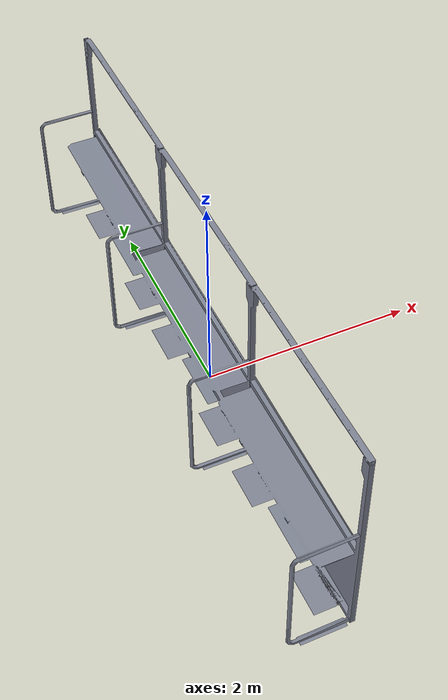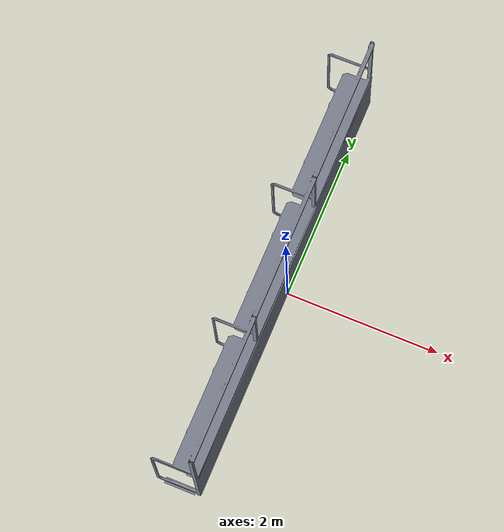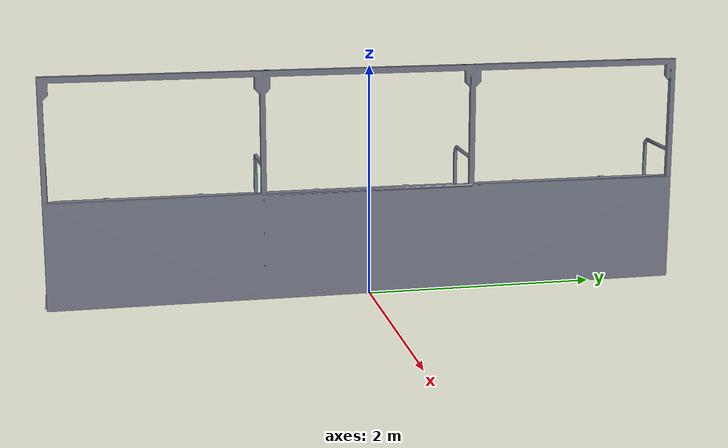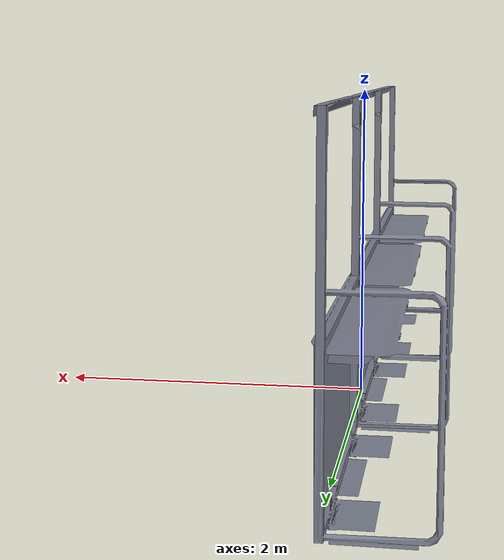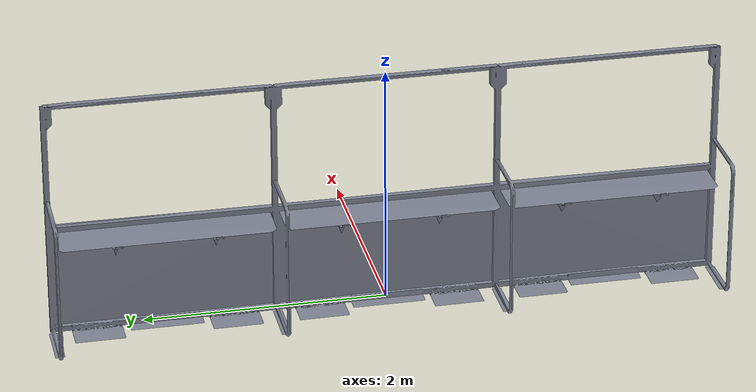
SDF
<?xml version="1.0"?>
<sdf version="1.8">
  <model name="reefscape_driver_stations">
    <static>true</static>

    <link name="link">
      <visual name="visual">
        <geometry>
          <mesh>
            <uri>meshes/driver_stations.stl</uri>
            <scale>1 1 1</scale>
          </mesh>
        </geometry>
        <material>
          <ambient>0.25 0.26 0.29 1</ambient>
          <diffuse>0.50 0.52 0.58 1</diffuse>
        </material>
      </visual>

      <collision name="collision">
        <geometry>
          <mesh>
            <uri>meshes/driver_stations.stl</uri>
            <scale>1 1 1</scale>
          </mesh>
        </geometry>
      </collision>
    </link>
  </model>
</sdf>
